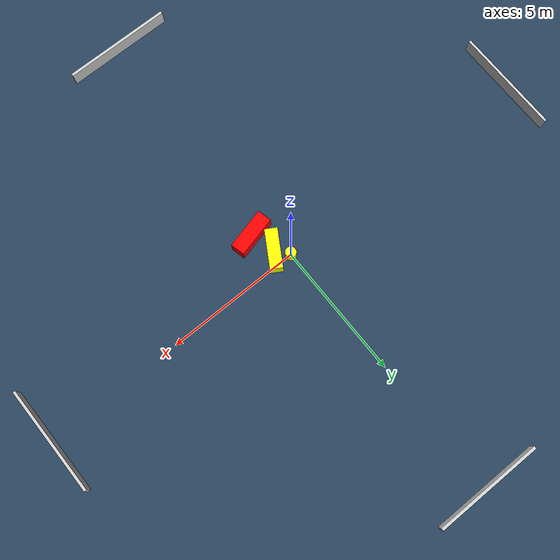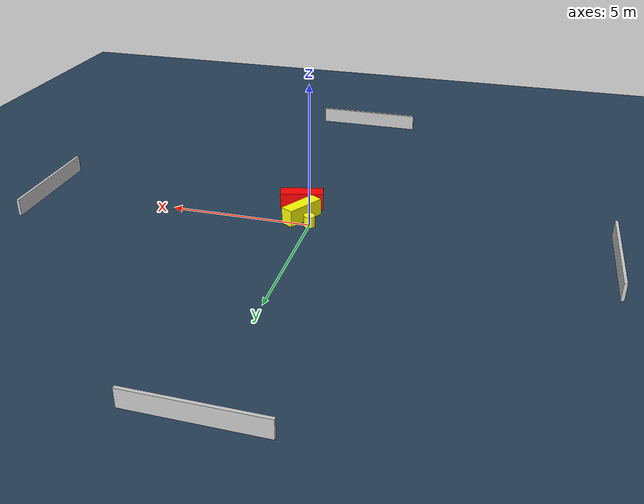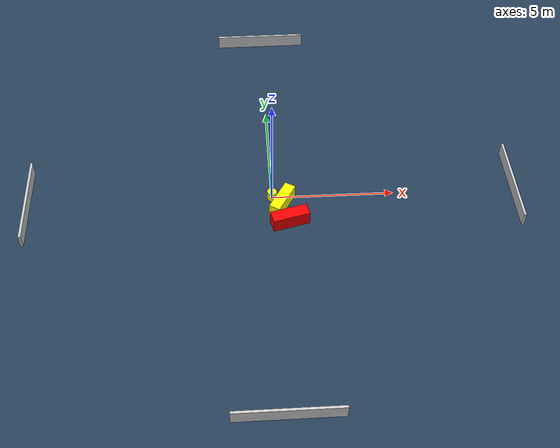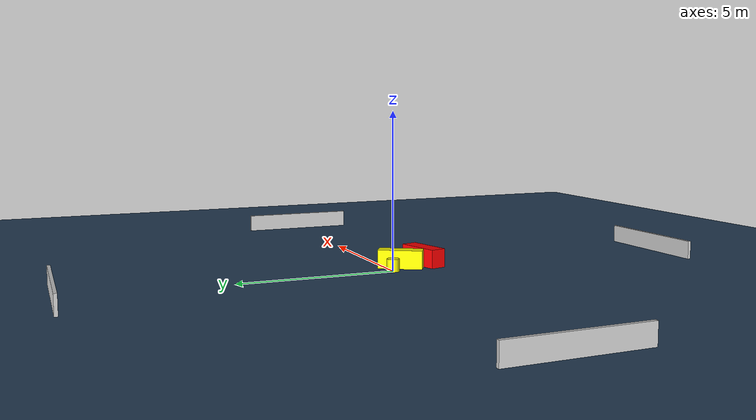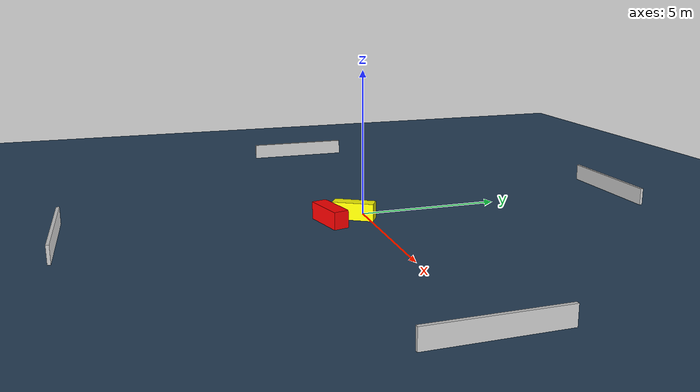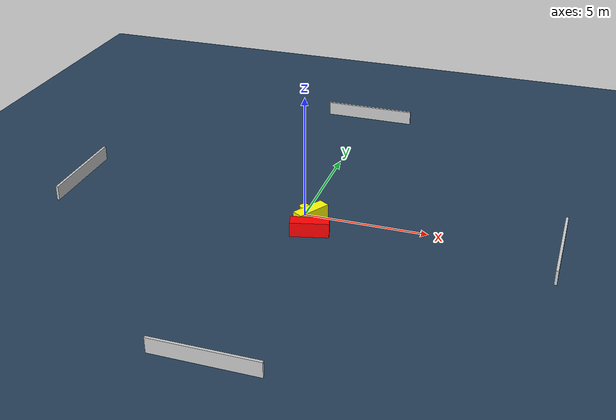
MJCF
<?xml version="1.0" ?>
<mujoco model="generated_environment">
  <option timestep="0.01" integrator="RK4" cone="elliptic"/>
  <default>
    <geom density="1"/>
  </default>
  <asset>
    <texture builtin="gradient" height="3072" name="skybox" rgb1="0.3 0.5 0.7" rgb2="0 0 0" type="skybox" width="512"/>
    <texture builtin="checker" height="300" name="groundplane" rgb1="0.2 0.3 0.4" rgb2="0.1 0.2 0.3" type="2d" width="300"/>
    <material name="groundplane" reflectance="0.2" texrepeat="5 5" texture="groundplane"/>
  </asset>
  <worldbody>
    <light dir="0 0 -1" directional="true" pos="0 0 1.5"/>
    <geom condim="3" friction="0.5 0.005 0.001" material="groundplane" name="floor" pos="0 0 0" size="0 0 0.05" type="plane"/>
    <body name="walls">
      <geom name="wall_1" condim="4" pos="-10.0 0.0 0.3" rgba="0.800000011920929 0.800000011920929 0.800000011920929 1.0" size="0.05 2.0 0.3" type="box"/>
      <geom name="wall_2" condim="4" pos="10.0 0.0 0.3" rgba="0.800000011920929 0.800000011920929 0.800000011920929 1.0" size="0.05 2.0 0.3" type="box"/>
      <geom name="wall_3" condim="4" pos="0.0 -10.0 0.3" rgba="0.800000011920929 0.800000011920929 0.800000011920929 1.0" size="2.0 0.05 0.3" type="box"/>
      <geom name="wall_4" condim="4" pos="0.0 10.0 0.3" rgba="0.800000011920929 0.800000011920929 0.800000011920929 1.0" size="2.0 0.05 0.3" type="box"/>
    </body>
    <body name="robot">
      <joint name="joint_x" type="slide" pos="0 0 0" axis="1 0 0"/>
      <joint name="joint_y" type="slide" pos="0 0 0" axis="0 1 0"/>
      <geom name="robot" type="cylinder" pos="0.0 0.0 0.2" size="0.2 0.2 0.0" mass="5.0" friction="1.0 0.005 0.0001" condim="4" rgba="1.0 1.0 0.0 1.0"/>
    </body>
    <body name="obstacle_1_movable">
      <geom name="obstacle_1_movable" condim="4" pos="0.3981086933187002 -0.43601253513160476 0.3" euler="0 0 239.21475923909108" friction="0.0 0.005 0.001" rgba="1.0 1.0 0.0 1.0" size="0.7141586060619167 0.23153148036497828 0.3" type="box" mass="0.1"/>
      <joint type="free"/>
    </body>
    <body name="obstacle_2_static">
      <geom name="obstacle_2_static" condim="4" pos="0.6499445913636244 -1.3557479706636468 0.3" euler="0 0 14.018426045177046" friction="0.0 0.005 0.001" rgba="1.0 0.0 0.0 1.0" size="0.7596717844967309 0.26318347951114746 0.3" type="box"/>
    </body>
  </worldbody>
  <actuator>
    <motor name="actuator_x" joint="joint_x" gear="1" ctrlrange="-1 1"/>
    <motor name="actuator_y" joint="joint_y" gear="1" ctrlrange="-1 1"/>
  </actuator>
</mujoco>
